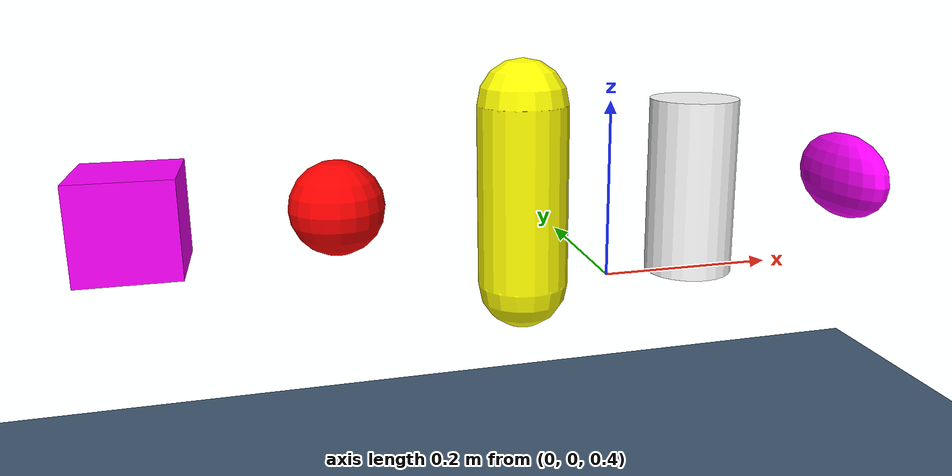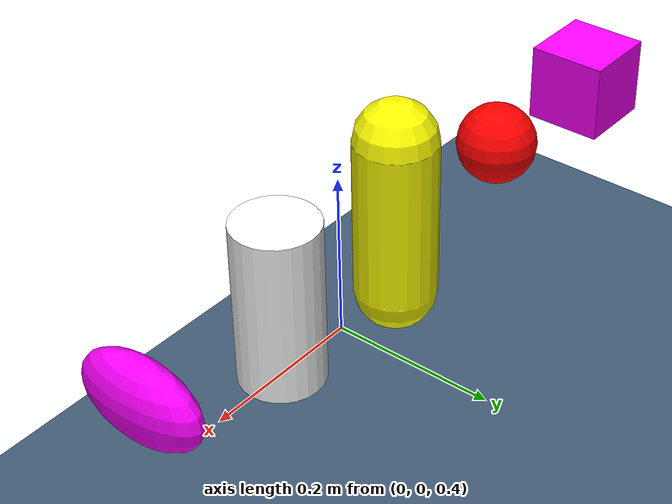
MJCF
<mujoco>
    <asset>
        <texture name="grid" type="2d" builtin="checker"
            rgb1="0.2 0.3 0.4" rgb2="0.3 0.4 0.5" width="300" height="300"/>
        <texture type="skybox" builtin="gradient"
            rgb1="0.3 0.5 0.7" rgb2="0 0 0" width="512" height="512"/>
        <material name="grid" texture="grid" texrepeat="6 6" reflectance="1.0"/>
    </asset>

    <worldbody>
        <light pos="0 0 3" dir="0 0 -1" diffuse="0.8 0.8 0.8"/>
        <geom type="plane" size="1 1 0.1" material="grid"/>

        <body pos="-0.3 0 0.5">
            <freejoint/>
            <geom type="sphere" size="0.05" rgba="1 0 0 1"/>
        </body>

        <body pos="-0.5 0 0.5">
            <freejoint/>
            <geom type="box" size="0.05 0.05 0.05" rgba="1 0 1 1"/>
        </body>

        <body pos="-0.1 0 0.5">
            <freejoint/>
            <geom type="capsule" size="0.05 0.1" rgba="1 1 0 1"/>
        </body>

        <body pos="0.1 0 0.5">
            <freejoint/>
            <geom type="cylinder" size="0.05 0.1" rgba="1 1 1 1"/>
        </body>

        <body pos="0.3 0 0.5">
            <freejoint/>
            <geom type="ellipsoid" size="0.03 0.08 0.05" rgba="1 0 1 1"/>
        </body>
    </worldbody>
</mujoco>
